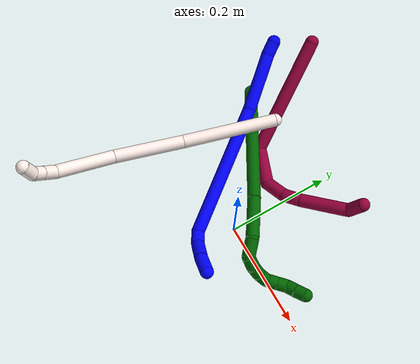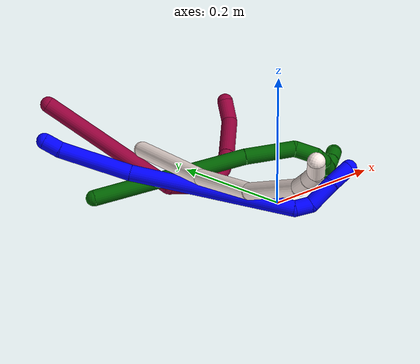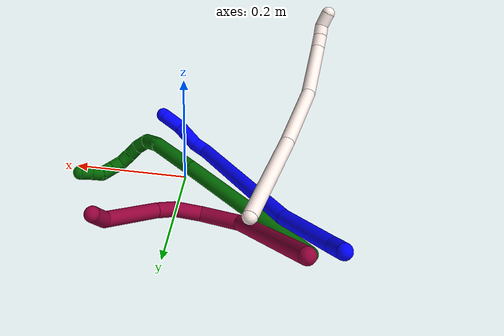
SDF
<sdf version="1.7">
 <world name="default">
  <model name="1">
   <static>0</static>
   <link name="1">
    <collision name="collision-cylinder-e_1_1_4">
     <pose>0.007458 -0.008598 0.007206 0.873246 0.586709 0.280083</pose>
     <geometry><cylinder><radius>0.0125</radius><length>0.026941</length></cylinder></geometry>
     <surface>
      <friction><ode><mu>1.16</mu><mu2>1.16</mu2><slip1>0</slip1><slip2>0</slip2></ode></friction>
      <contact><ode><kp>1e+06</kp><kd>1</kd><max_vel>0</max_vel><min_depth>0.001</min_depth></ode></contact>
     </surface>
    </collision>
    <visual name="visual-cylinder-e_1_1_4">
     <pose>0.007458 -0.008598 0.007206 0.873246 0.586709 0.280083</pose>
     <geometry><cylinder><radius>0.0125</radius><length>0.026941</length></cylinder></geometry>
     <material><ambient>0 0 1 1</ambient></material>
    </visual>
    <collision name="collision-cylinder-e_2_4_5">
     <pose>0.049618 -0.056091 0.034426 1.09556 0.670657 0.418956</pose>
     <geometry><cylinder><radius>0.0125</radius><length>0.111673</length></cylinder></geometry>
     <surface>
      <friction><ode><mu>1.16</mu><mu2>1.16</mu2><slip1>0</slip1><slip2>0</slip2></ode></friction>
      <contact><ode><kp>1e+06</kp><kd>1</kd><max_vel>0</max_vel><min_depth>0.001</min_depth></ode></contact>
     </surface>
    </collision>
    <visual name="visual-cylinder-e_2_4_5">
     <pose>0.049618 -0.056091 0.034426 1.09556 0.670657 0.418956</pose>
     <geometry><cylinder><radius>0.0125</radius><length>0.111673</length></cylinder></geometry>
     <material><ambient>0 0 1 1</ambient></material>
    </visual>
    <collision name="collision-cylinder-e_3_5_6">
     <pose>0.177061 -0.172958 0.092905 1.11252 0.817652 0.526243</pose>
     <geometry><cylinder><radius>0.0125</radius><length>0.254243</length></cylinder></geometry>
     <surface>
      <friction><ode><mu>1.16</mu><mu2>1.16</mu2><slip1>0</slip1><slip2>0</slip2></ode></friction>
      <contact><ode><kp>1e+06</kp><kd>1</kd><max_vel>0</max_vel><min_depth>0.001</min_depth></ode></contact>
     </surface>
    </collision>
    <visual name="visual-cylinder-e_3_5_6">
     <pose>0.177061 -0.172958 0.092905 1.11252 0.817652 0.526243</pose>
     <geometry><cylinder><radius>0.0125</radius><length>0.254243</length></cylinder></geometry>
     <material><ambient>0 0 1 1</ambient></material>
    </visual>
    <collision name="collision-cylinder-e_4_6_7">
     <pose>0.278828 -0.259857 0.128782 1.85277 0.770832 0.990141</pose>
     <geometry><cylinder><radius>0.0125</radius><length>0.025911</length></cylinder></geometry>
     <surface>
      <friction><ode><mu>1.16</mu><mu2>1.16</mu2><slip1>0</slip1><slip2>0</slip2></ode></friction>
      <contact><ode><kp>1e+06</kp><kd>1</kd><max_vel>0</max_vel><min_depth>0.001</min_depth></ode></contact>
     </surface>
    </collision>
    <visual name="visual-cylinder-e_4_6_7">
     <pose>0.278828 -0.259857 0.128782 1.85277 0.770832 0.990141</pose>
     <geometry><cylinder><radius>0.0125</radius><length>0.025911</length></cylinder></geometry>
     <material><ambient>0 0 1 1</ambient></material>
    </visual>
    <collision name="collision-cylinder-e_5_7_8">
     <pose>0.30311 -0.276628 0.112039 2.63558 0.755823 1.98707</pose>
     <geometry><cylinder><radius>0.0125</radius><length>0.044483</length></cylinder></geometry>
     <surface>
      <friction><ode><mu>1.16</mu><mu2>1.16</mu2><slip1>0</slip1><slip2>0</slip2></ode></friction>
      <contact><ode><kp>1e+06</kp><kd>1</kd><max_vel>0</max_vel><min_depth>0.001</min_depth></ode></contact>
     </surface>
    </collision>
    <visual name="visual-cylinder-e_5_7_8">
     <pose>0.30311 -0.276628 0.112039 2.63558 0.755823 1.98707</pose>
     <geometry><cylinder><radius>0.0125</radius><length>0.044483</length></cylinder></geometry>
     <material><ambient>0 0 1 1</ambient></material>
    </visual>
    <collision name="collision-cylinder-e_6_8_2">
     <pose>0.328912 -0.294083 0.086306 2.44876 0.611408 1.43687</pose>
     <geometry><cylinder><radius>0.0125</radius><length>0.036749</length></cylinder></geometry>
     <surface>
      <friction><ode><mu>1.16</mu><mu2>1.16</mu2><slip1>0</slip1><slip2>0</slip2></ode></friction>
      <contact><ode><kp>1e+06</kp><kd>1</kd><max_vel>0</max_vel><min_depth>0.001</min_depth></ode></contact>
     </surface>
    </collision>
    <visual name="visual-cylinder-e_6_8_2">
     <pose>0.328912 -0.294083 0.086306 2.44876 0.611408 1.43687</pose>
     <geometry><cylinder><radius>0.0125</radius><length>0.036749</length></cylinder></geometry>
     <material><ambient>0 0 1 1</ambient></material>
    </visual>
    <collision name="collision-sphere-2">
     <pose>0.339459 -0.303693 0.074729 0 -0 0</pose>
     <geometry><sphere><radius>0.0125</radius></sphere></geometry>
     <surface>
      <friction><ode><mu>1.16</mu><mu2>1.16</mu2><slip1>0</slip1><slip2>0</slip2></ode></friction>
      <contact><ode><kp>1e+06</kp><kd>1</kd><max_vel>0</max_vel><min_depth>0.001</min_depth></ode></contact>
     </surface>
    </collision>
    <visual name="visual-sphere-2">
     <pose>0.339459 -0.303693 0.074729 0 -0 0</pose>
     <geometry><sphere><radius>0.0125</radius></sphere></geometry>
     <material><ambient>0 0 1 1</ambient></material>
    </visual>
    <collision name="collision-sphere-4">
     <pose>0.014915 -0.017195 0.014411 0 -0 0</pose>
     <geometry><sphere><radius>0.0125</radius></sphere></geometry>
     <surface>
      <friction><ode><mu>1.16</mu><mu2>1.16</mu2><slip1>0</slip1><slip2>0</slip2></ode></friction>
      <contact><ode><kp>1e+06</kp><kd>1</kd><max_vel>0</max_vel><min_depth>0.001</min_depth></ode></contact>
     </surface>
    </collision>
    <visual name="visual-sphere-4">
     <pose>0.014915 -0.017195 0.014411 0 -0 0</pose>
     <geometry><sphere><radius>0.0125</radius></sphere></geometry>
     <material><ambient>0 0 1 1</ambient></material>
    </visual>
    <collision name="collision-sphere-1">
     <geometry><sphere><radius>0.0125</radius></sphere></geometry>
     <surface>
      <friction><ode><mu>1.16</mu><mu2>1.16</mu2><slip1>0</slip1><slip2>0</slip2></ode></friction>
      <contact><ode><kp>1e+06</kp><kd>1</kd><max_vel>0</max_vel><min_depth>0.001</min_depth></ode></contact>
     </surface>
    </collision>
    <visual name="visual-sphere-1">
     <geometry><sphere><radius>0.0125</radius></sphere></geometry>
     <material><ambient>0 0 1 1</ambient></material>
    </visual>
    <collision name="collision-sphere-8">
     <pose>0.318365 -0.284473 0.097882 0 -0 0</pose>
     <geometry><sphere><radius>0.0125</radius></sphere></geometry>
     <surface>
      <friction><ode><mu>1.16</mu><mu2>1.16</mu2><slip1>0</slip1><slip2>0</slip2></ode></friction>
      <contact><ode><kp>1e+06</kp><kd>1</kd><max_vel>0</max_vel><min_depth>0.001</min_depth></ode></contact>
     </surface>
    </collision>
    <visual name="visual-sphere-8">
     <pose>0.318365 -0.284473 0.097882 0 -0 0</pose>
     <geometry><sphere><radius>0.0125</radius></sphere></geometry>
     <material><ambient>0 0 1 1</ambient></material>
    </visual>
    <collision name="collision-sphere-5">
     <pose>0.08432 -0.094986 0.054441 0 -0 0</pose>
     <geometry><sphere><radius>0.0125</radius></sphere></geometry>
     <surface>
      <friction><ode><mu>1.16</mu><mu2>1.16</mu2><slip1>0</slip1><slip2>0</slip2></ode></friction>
      <contact><ode><kp>1e+06</kp><kd>1</kd><max_vel>0</max_vel><min_depth>0.001</min_depth></ode></contact>
     </surface>
    </collision>
    <visual name="visual-sphere-5">
     <pose>0.08432 -0.094986 0.054441 0 -0 0</pose>
     <geometry><sphere><radius>0.0125</radius></sphere></geometry>
     <material><ambient>0 0 1 1</ambient></material>
    </visual>
    <collision name="collision-sphere-6">
     <pose>0.269801 -0.25093 0.131368 0 -0 0</pose>
     <geometry><sphere><radius>0.0125</radius></sphere></geometry>
     <surface>
      <friction><ode><mu>1.16</mu><mu2>1.16</mu2><slip1>0</slip1><slip2>0</slip2></ode></friction>
      <contact><ode><kp>1e+06</kp><kd>1</kd><max_vel>0</max_vel><min_depth>0.001</min_depth></ode></contact>
     </surface>
    </collision>
    <visual name="visual-sphere-6">
     <pose>0.269801 -0.25093 0.131368 0 -0 0</pose>
     <geometry><sphere><radius>0.0125</radius></sphere></geometry>
     <material><ambient>0 0 1 1</ambient></material>
    </visual>
    <collision name="collision-sphere-7">
     <pose>0.287855 -0.268783 0.126196 0 -0 0</pose>
     <geometry><sphere><radius>0.0125</radius></sphere></geometry>
     <surface>
      <friction><ode><mu>1.16</mu><mu2>1.16</mu2><slip1>0</slip1><slip2>0</slip2></ode></friction>
      <contact><ode><kp>1e+06</kp><kd>1</kd><max_vel>0</max_vel><min_depth>0.001</min_depth></ode></contact>
     </surface>
    </collision>
    <visual name="visual-sphere-7">
     <pose>0.287855 -0.268783 0.126196 0 -0 0</pose>
     <geometry><sphere><radius>0.0125</radius></sphere></geometry>
     <material><ambient>0 0 1 1</ambient></material>
    </visual>
    <inertial>
     <pose>0.167107 -0.160629 0.078303 0 -0 0</pose>
     <mass>0.5</mass>
     <inertia>
      <ixx>0.001454</ixx>
      <ixy>0</ixy>
      <ixz>0</ixz>
      <iyy>0.00157</iyy>
      <iyz>0</iyz>
      <izz>-0.000148</izz>
     </inertia>
    </inertial>
   </link>
   <pose>-0.259623 0.239541 0.104206 2.59753 -0.484221 -1.31061</pose>
  </model>
  <model name="6">
   <static>0</static>
   <link name="6">
    <collision name="collision-cylinder-e_1_1_4">
     <pose>0.050542 -0.088238 -0.064214 2.19989 0.43372 0.816964</pose>
     <geometry><cylinder><radius>0.0125</radius><length>0.240532</length></cylinder></geometry>
     <surface>
      <friction><ode><mu>1.16</mu><mu2>1.16</mu2><slip1>0</slip1><slip2>0</slip2></ode></friction>
      <contact><ode><kp>1e+06</kp><kd>1</kd><max_vel>0</max_vel><min_depth>0.001</min_depth></ode></contact>
     </surface>
    </collision>
    <visual name="visual-cylinder-e_1_1_4">
     <pose>0.050542 -0.088238 -0.064214 2.19989 0.43372 0.816964</pose>
     <geometry><cylinder><radius>0.0125</radius><length>0.240532</length></cylinder></geometry>
     <material><ambient>0 0.392157 0.003922 1</ambient></material>
    </visual>
    <collision name="collision-cylinder-e_2_4_5">
     <pose>0.120514 -0.202394 -0.150429 2.27465 0.519236 1.04199</pose>
     <geometry><cylinder><radius>0.0125</radius><length>0.078314</length></cylinder></geometry>
     <surface>
      <friction><ode><mu>1.16</mu><mu2>1.16</mu2><slip1>0</slip1><slip2>0</slip2></ode></friction>
      <contact><ode><kp>1e+06</kp><kd>1</kd><max_vel>0</max_vel><min_depth>0.001</min_depth></ode></contact>
     </surface>
    </collision>
    <visual name="visual-cylinder-e_2_4_5">
     <pose>0.120514 -0.202394 -0.150429 2.27465 0.519236 1.04199</pose>
     <geometry><cylinder><radius>0.0125</radius><length>0.078314</length></cylinder></geometry>
     <material><ambient>0 0.392157 0.003922 1</ambient></material>
    </visual>
    <collision name="collision-cylinder-e_3_5_6">
     <pose>0.154075 -0.233776 -0.181383 2.59356 0.932229 2.12257</pose>
     <geometry><cylinder><radius>0.0125</radius><length>0.035197</length></cylinder></geometry>
     <surface>
      <friction><ode><mu>1.16</mu><mu2>1.16</mu2><slip1>0</slip1><slip2>0</slip2></ode></friction>
      <contact><ode><kp>1e+06</kp><kd>1</kd><max_vel>0</max_vel><min_depth>0.001</min_depth></ode></contact>
     </surface>
    </collision>
    <visual name="visual-cylinder-e_3_5_6">
     <pose>0.154075 -0.233776 -0.181383 2.59356 0.932229 2.12257</pose>
     <geometry><cylinder><radius>0.0125</radius><length>0.035197</length></cylinder></geometry>
     <material><ambient>0 0.392157 0.003922 1</ambient></material>
    </visual>
    <collision name="collision-cylinder-e_4_6_7">
     <pose>0.178951 -0.243098 -0.188049 1.03544 1.17551 0.725397</pose>
     <geometry><cylinder><radius>0.0125</radius><length>0.023286</length></cylinder></geometry>
     <surface>
      <friction><ode><mu>1.16</mu><mu2>1.16</mu2><slip1>0</slip1><slip2>0</slip2></ode></friction>
      <contact><ode><kp>1e+06</kp><kd>1</kd><max_vel>0</max_vel><min_depth>0.001</min_depth></ode></contact>
     </surface>
    </collision>
    <visual name="visual-cylinder-e_4_6_7">
     <pose>0.178951 -0.243098 -0.188049 1.03544 1.17551 0.725397</pose>
     <geometry><cylinder><radius>0.0125</radius><length>0.023286</length></cylinder></geometry>
     <material><ambient>0 0.392157 0.003922 1</ambient></material>
    </visual>
    <collision name="collision-cylinder-e_5_7_8">
     <pose>0.198924 -0.249252 -0.181324 0.477736 1.07444 0.288097</pose>
     <geometry><cylinder><radius>0.0125</radius><length>0.020988</length></cylinder></geometry>
     <surface>
      <friction><ode><mu>1.16</mu><mu2>1.16</mu2><slip1>0</slip1><slip2>0</slip2></ode></friction>
      <contact><ode><kp>1e+06</kp><kd>1</kd><max_vel>0</max_vel><min_depth>0.001</min_depth></ode></contact>
     </surface>
    </collision>
    <visual name="visual-cylinder-e_5_7_8">
     <pose>0.198924 -0.249252 -0.181324 0.477736 1.07444 0.288097</pose>
     <geometry><cylinder><radius>0.0125</radius><length>0.020988</length></cylinder></geometry>
     <material><ambient>0 0.392157 0.003922 1</ambient></material>
    </visual>
    <collision name="collision-cylinder-e_6_8_9">
     <pose>0.216396 -0.254975 -0.170886 0.518806 0.873211 0.246422</pose>
     <geometry><cylinder><radius>0.0125</radius><length>0.021513</length></cylinder></geometry>
     <surface>
      <friction><ode><mu>1.16</mu><mu2>1.16</mu2><slip1>0</slip1><slip2>0</slip2></ode></friction>
      <contact><ode><kp>1e+06</kp><kd>1</kd><max_vel>0</max_vel><min_depth>0.001</min_depth></ode></contact>
     </surface>
    </collision>
    <visual name="visual-cylinder-e_6_8_9">
     <pose>0.216396 -0.254975 -0.170886 0.518806 0.873211 0.246422</pose>
     <geometry><cylinder><radius>0.0125</radius><length>0.021513</length></cylinder></geometry>
     <material><ambient>0 0.392157 0.003922 1</ambient></material>
    </visual>
    <collision name="collision-cylinder-e_7_9_10">
     <pose>0.228002 -0.264537 -0.157649 0.703319 0.340657 0.126046</pose>
     <geometry><cylinder><radius>0.0125</radius><length>0.020132</length></cylinder></geometry>
     <surface>
      <friction><ode><mu>1.16</mu><mu2>1.16</mu2><slip1>0</slip1><slip2>0</slip2></ode></friction>
      <contact><ode><kp>1e+06</kp><kd>1</kd><max_vel>0</max_vel><min_depth>0.001</min_depth></ode></contact>
     </surface>
    </collision>
    <visual name="visual-cylinder-e_7_9_10">
     <pose>0.228002 -0.264537 -0.157649 0.703319 0.340657 0.126046</pose>
     <geometry><cylinder><radius>0.0125</radius><length>0.020132</length></cylinder></geometry>
     <material><ambient>0 0.392157 0.003922 1</ambient></material>
    </visual>
    <collision name="collision-cylinder-e_8_10_11">
     <pose>0.23465 -0.276796 -0.143214 0.704732 0.33448 0.123993</pose>
     <geometry><cylinder><radius>0.0125</radius><length>0.020011</length></cylinder></geometry>
     <surface>
      <friction><ode><mu>1.16</mu><mu2>1.16</mu2><slip1>0</slip1><slip2>0</slip2></ode></friction>
      <contact><ode><kp>1e+06</kp><kd>1</kd><max_vel>0</max_vel><min_depth>0.001</min_depth></ode></contact>
     </surface>
    </collision>
    <visual name="visual-cylinder-e_8_10_11">
     <pose>0.23465 -0.276796 -0.143214 0.704732 0.33448 0.123993</pose>
     <geometry><cylinder><radius>0.0125</radius><length>0.020011</length></cylinder></geometry>
     <material><ambient>0 0.392157 0.003922 1</ambient></material>
    </visual>
    <collision name="collision-cylinder-e_9_11_12">
     <pose>0.238639 -0.292414 -0.13292 1.25578 0.07043 0.051134</pose>
     <geometry><cylinder><radius>0.0125</radius><length>0.020022</length></cylinder></geometry>
     <surface>
      <friction><ode><mu>1.16</mu><mu2>1.16</mu2><slip1>0</slip1><slip2>0</slip2></ode></friction>
      <contact><ode><kp>1e+06</kp><kd>1</kd><max_vel>0</max_vel><min_depth>0.001</min_depth></ode></contact>
     </surface>
    </collision>
    <visual name="visual-cylinder-e_9_11_12">
     <pose>0.238639 -0.292414 -0.13292 1.25578 0.07043 0.051134</pose>
     <geometry><cylinder><radius>0.0125</radius><length>0.020022</length></cylinder></geometry>
     <material><ambient>0 0.392157 0.003922 1</ambient></material>
    </visual>
    <collision name="collision-cylinder-e_10_12_2">
     <pose>0.240144 -0.31121 -0.126235 1.20239 0.080112 0.054963</pose>
     <geometry><cylinder><radius>0.0125</radius><length>0.020004</length></cylinder></geometry>
     <surface>
      <friction><ode><mu>1.16</mu><mu2>1.16</mu2><slip1>0</slip1><slip2>0</slip2></ode></friction>
      <contact><ode><kp>1e+06</kp><kd>1</kd><max_vel>0</max_vel><min_depth>0.001</min_depth></ode></contact>
     </surface>
    </collision>
    <visual name="visual-cylinder-e_10_12_2">
     <pose>0.240144 -0.31121 -0.126235 1.20239 0.080112 0.054963</pose>
     <geometry><cylinder><radius>0.0125</radius><length>0.020004</length></cylinder></geometry>
     <material><ambient>0 0.392157 0.003922 1</ambient></material>
    </visual>
    <collision name="collision-sphere-2">
     <pose>0.240944 -0.320511 -0.122645 0 -0 0</pose>
     <geometry><sphere><radius>0.0125</radius></sphere></geometry>
     <surface>
      <friction><ode><mu>1.16</mu><mu2>1.16</mu2><slip1>0</slip1><slip2>0</slip2></ode></friction>
      <contact><ode><kp>1e+06</kp><kd>1</kd><max_vel>0</max_vel><min_depth>0.001</min_depth></ode></contact>
     </surface>
    </collision>
    <visual name="visual-sphere-2">
     <pose>0.240944 -0.320511 -0.122645 0 -0 0</pose>
     <geometry><sphere><radius>0.0125</radius></sphere></geometry>
     <material><ambient>0 0.392157 0.003922 1</ambient></material>
    </visual>
    <collision name="collision-sphere-12">
     <pose>0.239344 -0.301908 -0.129826 0 -0 0</pose>
     <geometry><sphere><radius>0.0125</radius></sphere></geometry>
     <surface>
      <friction><ode><mu>1.16</mu><mu2>1.16</mu2><slip1>0</slip1><slip2>0</slip2></ode></friction>
      <contact><ode><kp>1e+06</kp><kd>1</kd><max_vel>0</max_vel><min_depth>0.001</min_depth></ode></contact>
     </surface>
    </collision>
    <visual name="visual-sphere-12">
     <pose>0.239344 -0.301908 -0.129826 0 -0 0</pose>
     <geometry><sphere><radius>0.0125</radius></sphere></geometry>
     <material><ambient>0 0.392157 0.003922 1</ambient></material>
    </visual>
    <collision name="collision-sphere-11">
     <pose>0.237935 -0.282919 -0.136014 0 -0 0</pose>
     <geometry><sphere><radius>0.0125</radius></sphere></geometry>
     <surface>
      <friction><ode><mu>1.16</mu><mu2>1.16</mu2><slip1>0</slip1><slip2>0</slip2></ode></friction>
      <contact><ode><kp>1e+06</kp><kd>1</kd><max_vel>0</max_vel><min_depth>0.001</min_depth></ode></contact>
     </surface>
    </collision>
    <visual name="visual-sphere-11">
     <pose>0.237935 -0.282919 -0.136014 0 -0 0</pose>
     <geometry><sphere><radius>0.0125</radius></sphere></geometry>
     <material><ambient>0 0.392157 0.003922 1</ambient></material>
    </visual>
    <collision name="collision-sphere-10">
     <pose>0.231365 -0.270673 -0.150413 0 -0 0</pose>
     <geometry><sphere><radius>0.0125</radius></sphere></geometry>
     <surface>
      <friction><ode><mu>1.16</mu><mu2>1.16</mu2><slip1>0</slip1><slip2>0</slip2></ode></friction>
      <contact><ode><kp>1e+06</kp><kd>1</kd><max_vel>0</max_vel><min_depth>0.001</min_depth></ode></contact>
     </surface>
    </collision>
    <visual name="visual-sphere-10">
     <pose>0.231365 -0.270673 -0.150413 0 -0 0</pose>
     <geometry><sphere><radius>0.0125</radius></sphere></geometry>
     <material><ambient>0 0.392157 0.003922 1</ambient></material>
    </visual>
    <collision name="collision-sphere-9">
     <pose>0.224639 -0.258401 -0.164885 0 -0 0</pose>
     <geometry><sphere><radius>0.0125</radius></sphere></geometry>
     <surface>
      <friction><ode><mu>1.16</mu><mu2>1.16</mu2><slip1>0</slip1><slip2>0</slip2></ode></friction>
      <contact><ode><kp>1e+06</kp><kd>1</kd><max_vel>0</max_vel><min_depth>0.001</min_depth></ode></contact>
     </surface>
    </collision>
    <visual name="visual-sphere-9">
     <pose>0.224639 -0.258401 -0.164885 0 -0 0</pose>
     <geometry><sphere><radius>0.0125</radius></sphere></geometry>
     <material><ambient>0 0.392157 0.003922 1</ambient></material>
    </visual>
    <collision name="collision-sphere-4">
     <pose>0.101083 -0.176477 -0.128428 0 -0 0</pose>
     <geometry><sphere><radius>0.0125</radius></sphere></geometry>
     <surface>
      <friction><ode><mu>1.16</mu><mu2>1.16</mu2><slip1>0</slip1><slip2>0</slip2></ode></friction>
      <contact><ode><kp>1e+06</kp><kd>1</kd><max_vel>0</max_vel><min_depth>0.001</min_depth></ode></contact>
     </surface>
    </collision>
    <visual name="visual-sphere-4">
     <pose>0.101083 -0.176477 -0.128428 0 -0 0</pose>
     <geometry><sphere><radius>0.0125</radius></sphere></geometry>
     <material><ambient>0 0.392157 0.003922 1</ambient></material>
    </visual>
    <collision name="collision-sphere-1">
     <geometry><sphere><radius>0.0125</radius></sphere></geometry>
     <surface>
      <friction><ode><mu>1.16</mu><mu2>1.16</mu2><slip1>0</slip1><slip2>0</slip2></ode></friction>
      <contact><ode><kp>1e+06</kp><kd>1</kd><max_vel>0</max_vel><min_depth>0.001</min_depth></ode></contact>
     </surface>
    </collision>
    <visual name="visual-sphere-1">
     <geometry><sphere><radius>0.0125</radius></sphere></geometry>
     <material><ambient>0 0.392157 0.003922 1</ambient></material>
    </visual>
    <collision name="collision-sphere-8">
     <pose>0.208152 -0.251549 -0.176886 0 -0 0</pose>
     <geometry><sphere><radius>0.0125</radius></sphere></geometry>
     <surface>
      <friction><ode><mu>1.16</mu><mu2>1.16</mu2><slip1>0</slip1><slip2>0</slip2></ode></friction>
      <contact><ode><kp>1e+06</kp><kd>1</kd><max_vel>0</max_vel><min_depth>0.001</min_depth></ode></contact>
     </surface>
    </collision>
    <visual name="visual-sphere-8">
     <pose>0.208152 -0.251549 -0.176886 0 -0 0</pose>
     <geometry><sphere><radius>0.0125</radius></sphere></geometry>
     <material><ambient>0 0.392157 0.003922 1</ambient></material>
    </visual>
    <collision name="collision-sphere-5">
     <pose>0.139944 -0.228311 -0.17243 0 -0 0</pose>
     <geometry><sphere><radius>0.0125</radius></sphere></geometry>
     <surface>
      <friction><ode><mu>1.16</mu><mu2>1.16</mu2><slip1>0</slip1><slip2>0</slip2></ode></friction>
      <contact><ode><kp>1e+06</kp><kd>1</kd><max_vel>0</max_vel><min_depth>0.001</min_depth></ode></contact>
     </surface>
    </collision>
    <visual name="visual-sphere-5">
     <pose>0.139944 -0.228311 -0.17243 0 -0 0</pose>
     <geometry><sphere><radius>0.0125</radius></sphere></geometry>
     <material><ambient>0 0.392157 0.003922 1</ambient></material>
    </visual>
    <collision name="collision-sphere-6">
     <pose>0.168206 -0.239242 -0.190336 0 -0 0</pose>
     <geometry><sphere><radius>0.0125</radius></sphere></geometry>
     <surface>
      <friction><ode><mu>1.16</mu><mu2>1.16</mu2><slip1>0</slip1><slip2>0</slip2></ode></friction>
      <contact><ode><kp>1e+06</kp><kd>1</kd><max_vel>0</max_vel><min_depth>0.001</min_depth></ode></contact>
     </surface>
    </collision>
    <visual name="visual-sphere-6">
     <pose>0.168206 -0.239242 -0.190336 0 -0 0</pose>
     <geometry><sphere><radius>0.0125</radius></sphere></geometry>
     <material><ambient>0 0.392157 0.003922 1</ambient></material>
    </visual>
    <collision name="collision-sphere-7">
     <pose>0.189697 -0.246954 -0.185762 0 -0 0</pose>
     <geometry><sphere><radius>0.0125</radius></sphere></geometry>
     <surface>
      <friction><ode><mu>1.16</mu><mu2>1.16</mu2><slip1>0</slip1><slip2>0</slip2></ode></friction>
      <contact><ode><kp>1e+06</kp><kd>1</kd><max_vel>0</max_vel><min_depth>0.001</min_depth></ode></contact>
     </surface>
    </collision>
    <visual name="visual-sphere-7">
     <pose>0.189697 -0.246954 -0.185762 0 -0 0</pose>
     <geometry><sphere><radius>0.0125</radius></sphere></geometry>
     <material><ambient>0 0.392157 0.003922 1</ambient></material>
    </visual>
    <inertial>
     <pose>0.117766 -0.16925 -0.113395 0 -0 0</pose>
     <mass>0.5</mass>
     <inertia>
      <ixx>0.00158</ixx>
      <ixy>0</ixy>
      <ixz>0</ixz>
      <iyy>0.000616</iyy>
      <iyz>0</iyz>
      <izz>0.000362</izz>
     </inertia>
    </inertial>
   </link>
   <pose>-0.222571 0.171192 0.020719 -2.09617 0.943939 -0.434126</pose>
  </model>
  <model name="8">
   <static>0</static>
   <link name="8">
    <collision name="collision-cylinder-e_1_1_4">
     <pose>0.00075 -0.005497 -0.111624 3.09238 0.006715 0.271194</pose>
     <geometry><cylinder><radius>0.0125</radius><length>0.223524</length></cylinder></geometry>
     <surface>
      <friction><ode><mu>1.16</mu><mu2>1.16</mu2><slip1>0</slip1><slip2>0</slip2></ode></friction>
      <contact><ode><kp>1e+06</kp><kd>1</kd><max_vel>0</max_vel><min_depth>0.001</min_depth></ode></contact>
     </surface>
    </collision>
    <visual name="visual-cylinder-e_1_1_4">
     <pose>0.00075 -0.005497 -0.111624 3.09238 0.006715 0.271194</pose>
     <geometry><cylinder><radius>0.0125</radius><length>0.223524</length></cylinder></geometry>
     <material><ambient>0.584314 0 0.227451 1</ambient></material>
    </visual>
    <collision name="collision-cylinder-e_2_4_5">
     <pose>0.025972 -0.012201 -0.248691 3.0942 0.765395 3.02397</pose>
     <geometry><cylinder><radius>0.0125</radius><length>0.070643</length></cylinder></geometry>
     <surface>
      <friction><ode><mu>1.16</mu><mu2>1.16</mu2><slip1>0</slip1><slip2>0</slip2></ode></friction>
      <contact><ode><kp>1e+06</kp><kd>1</kd><max_vel>0</max_vel><min_depth>0.001</min_depth></ode></contact>
     </surface>
    </collision>
    <visual name="visual-cylinder-e_2_4_5">
     <pose>0.025972 -0.012201 -0.248691 3.0942 0.765395 3.02397</pose>
     <geometry><cylinder><radius>0.0125</radius><length>0.070643</length></cylinder></geometry>
     <material><ambient>0.584314 0 0.227451 1</ambient></material>
    </visual>
    <collision name="collision-cylinder-e_3_5_6">
     <pose>0.072611 -0.01445 -0.274753 2.1081 1.51615 2.06048</pose>
     <geometry><cylinder><radius>0.0125</radius><length>0.044401</length></cylinder></geometry>
     <surface>
      <friction><ode><mu>1.16</mu><mu2>1.16</mu2><slip1>0</slip1><slip2>0</slip2></ode></friction>
      <contact><ode><kp>1e+06</kp><kd>1</kd><max_vel>0</max_vel><min_depth>0.001</min_depth></ode></contact>
     </surface>
    </collision>
    <visual name="visual-cylinder-e_3_5_6">
     <pose>0.072611 -0.01445 -0.274753 2.1081 1.51615 2.06048</pose>
     <geometry><cylinder><radius>0.0125</radius><length>0.044401</length></cylinder></geometry>
     <material><ambient>0.584314 0 0.227451 1</ambient></material>
    </visual>
    <collision name="collision-cylinder-e_4_6_7">
     <pose>0.111481 -0.012726 -0.271303 -0.5968 1.28425 -0.452189</pose>
     <geometry><cylinder><radius>0.0125</radius><length>0.034824</length></cylinder></geometry>
     <surface>
      <friction><ode><mu>1.16</mu><mu2>1.16</mu2><slip1>0</slip1><slip2>0</slip2></ode></friction>
      <contact><ode><kp>1e+06</kp><kd>1</kd><max_vel>0</max_vel><min_depth>0.001</min_depth></ode></contact>
     </surface>
    </collision>
    <visual name="visual-cylinder-e_4_6_7">
     <pose>0.111481 -0.012726 -0.271303 -0.5968 1.28425 -0.452189</pose>
     <geometry><cylinder><radius>0.0125</radius><length>0.034824</length></cylinder></geometry>
     <material><ambient>0.584314 0 0.227451 1</ambient></material>
    </visual>
    <collision name="collision-cylinder-e_5_7_8">
     <pose>0.170392 0.000806 -0.253616 -0.669028 1.18063 -0.457603</pose>
     <geometry><cylinder><radius>0.0125</radius><length>0.091278</length></cylinder></geometry>
     <surface>
      <friction><ode><mu>1.16</mu><mu2>1.16</mu2><slip1>0</slip1><slip2>0</slip2></ode></friction>
      <contact><ode><kp>1e+06</kp><kd>1</kd><max_vel>0</max_vel><min_depth>0.001</min_depth></ode></contact>
     </surface>
    </collision>
    <visual name="visual-cylinder-e_5_7_8">
     <pose>0.170392 0.000806 -0.253616 -0.669028 1.18063 -0.457603</pose>
     <geometry><cylinder><radius>0.0125</radius><length>0.091278</length></cylinder></geometry>
     <material><ambient>0.584314 0 0.227451 1</ambient></material>
    </visual>
    <collision name="collision-cylinder-e_6_8_2">
     <pose>0.224284 0.00744 -0.227411 0.317148 0.722698 0.120732</pose>
     <geometry><cylinder><radius>0.0125</radius><length>0.03533</length></cylinder></geometry>
     <surface>
      <friction><ode><mu>1.16</mu><mu2>1.16</mu2><slip1>0</slip1><slip2>0</slip2></ode></friction>
      <contact><ode><kp>1e+06</kp><kd>1</kd><max_vel>0</max_vel><min_depth>0.001</min_depth></ode></contact>
     </surface>
    </collision>
    <visual name="visual-cylinder-e_6_8_2">
     <pose>0.224284 0.00744 -0.227411 0.317148 0.722698 0.120732</pose>
     <geometry><cylinder><radius>0.0125</radius><length>0.03533</length></cylinder></geometry>
     <material><ambient>0.584314 0 0.227451 1</ambient></material>
    </visual>
    <collision name="collision-sphere-2">
     <pose>0.235968 0.003309 -0.214823 0 -0 0</pose>
     <geometry><sphere><radius>0.0125</radius></sphere></geometry>
     <surface>
      <friction><ode><mu>1.16</mu><mu2>1.16</mu2><slip1>0</slip1><slip2>0</slip2></ode></friction>
      <contact><ode><kp>1e+06</kp><kd>1</kd><max_vel>0</max_vel><min_depth>0.001</min_depth></ode></contact>
     </surface>
    </collision>
    <visual name="visual-sphere-2">
     <pose>0.235968 0.003309 -0.214823 0 -0 0</pose>
     <geometry><sphere><radius>0.0125</radius></sphere></geometry>
     <material><ambient>0.584314 0 0.227451 1</ambient></material>
    </visual>
    <collision name="collision-sphere-4">
     <pose>0.001501 -0.010995 -0.223249 0 -0 0</pose>
     <geometry><sphere><radius>0.0125</radius></sphere></geometry>
     <surface>
      <friction><ode><mu>1.16</mu><mu2>1.16</mu2><slip1>0</slip1><slip2>0</slip2></ode></friction>
      <contact><ode><kp>1e+06</kp><kd>1</kd><max_vel>0</max_vel><min_depth>0.001</min_depth></ode></contact>
     </surface>
    </collision>
    <visual name="visual-sphere-4">
     <pose>0.001501 -0.010995 -0.223249 0 -0 0</pose>
     <geometry><sphere><radius>0.0125</radius></sphere></geometry>
     <material><ambient>0.584314 0 0.227451 1</ambient></material>
    </visual>
    <collision name="collision-sphere-1">
     <geometry><sphere><radius>0.0125</radius></sphere></geometry>
     <surface>
      <friction><ode><mu>1.16</mu><mu2>1.16</mu2><slip1>0</slip1><slip2>0</slip2></ode></friction>
      <contact><ode><kp>1e+06</kp><kd>1</kd><max_vel>0</max_vel><min_depth>0.001</min_depth></ode></contact>
     </surface>
    </collision>
    <visual name="visual-sphere-1">
     <geometry><sphere><radius>0.0125</radius></sphere></geometry>
     <material><ambient>0.584314 0 0.227451 1</ambient></material>
    </visual>
    <collision name="collision-sphere-8">
     <pose>0.212601 0.011572 -0.24 0 -0 0</pose>
     <geometry><sphere><radius>0.0125</radius></sphere></geometry>
     <surface>
      <friction><ode><mu>1.16</mu><mu2>1.16</mu2><slip1>0</slip1><slip2>0</slip2></ode></friction>
      <contact><ode><kp>1e+06</kp><kd>1</kd><max_vel>0</max_vel><min_depth>0.001</min_depth></ode></contact>
     </surface>
    </collision>
    <visual name="visual-sphere-8">
     <pose>0.212601 0.011572 -0.24 0 -0 0</pose>
     <geometry><sphere><radius>0.0125</radius></sphere></geometry>
     <material><ambient>0.584314 0 0.227451 1</ambient></material>
    </visual>
    <collision name="collision-sphere-5">
     <pose>0.050444 -0.013408 -0.274133 0 -0 0</pose>
     <geometry><sphere><radius>0.0125</radius></sphere></geometry>
     <surface>
      <friction><ode><mu>1.16</mu><mu2>1.16</mu2><slip1>0</slip1><slip2>0</slip2></ode></friction>
      <contact><ode><kp>1e+06</kp><kd>1</kd><max_vel>0</max_vel><min_depth>0.001</min_depth></ode></contact>
     </surface>
    </collision>
    <visual name="visual-sphere-5">
     <pose>0.050444 -0.013408 -0.274133 0 -0 0</pose>
     <geometry><sphere><radius>0.0125</radius></sphere></geometry>
     <material><ambient>0.584314 0 0.227451 1</ambient></material>
    </visual>
    <collision name="collision-sphere-6">
     <pose>0.094779 -0.015492 -0.275374 0 -0 0</pose>
     <geometry><sphere><radius>0.0125</radius></sphere></geometry>
     <surface>
      <friction><ode><mu>1.16</mu><mu2>1.16</mu2><slip1>0</slip1><slip2>0</slip2></ode></friction>
      <contact><ode><kp>1e+06</kp><kd>1</kd><max_vel>0</max_vel><min_depth>0.001</min_depth></ode></contact>
     </surface>
    </collision>
    <visual name="visual-sphere-6">
     <pose>0.094779 -0.015492 -0.275374 0 -0 0</pose>
     <geometry><sphere><radius>0.0125</radius></sphere></geometry>
     <material><ambient>0.584314 0 0.227451 1</ambient></material>
    </visual>
    <collision name="collision-sphere-7">
     <pose>0.128183 -0.00996 -0.267233 0 -0 0</pose>
     <geometry><sphere><radius>0.0125</radius></sphere></geometry>
     <surface>
      <friction><ode><mu>1.16</mu><mu2>1.16</mu2><slip1>0</slip1><slip2>0</slip2></ode></friction>
      <contact><ode><kp>1e+06</kp><kd>1</kd><max_vel>0</max_vel><min_depth>0.001</min_depth></ode></contact>
     </surface>
    </collision>
    <visual name="visual-sphere-7">
     <pose>0.128183 -0.00996 -0.267233 0 -0 0</pose>
     <geometry><sphere><radius>0.0125</radius></sphere></geometry>
     <material><ambient>0.584314 0 0.227451 1</ambient></material>
    </visual>
    <inertial>
     <pose>0.065171 -0.005678 -0.1907 0 -0 0</pose>
     <mass>0.5</mass>
     <inertia>
      <ixx>0.001171</ixx>
      <ixy>0</ixy>
      <ixz>0</ixz>
      <iyy>-0.000545</iyy>
      <iyz>0</iyz>
      <izz>-9.2e-05</izz>
     </inertia>
    </inertial>
   </link>
   <pose>-0.208893 0.288502 0.138397 -0.944607 -0.315637 0.328312</pose>
  </model>
  <model name="11">
   <static>0</static>
   <link name="11">
    <collision name="collision-cylinder-e_1_1_4">
     <pose>0.00682 -0.022021 0.087475 0.246617 0.075464 0.009357</pose>
     <geometry><cylinder><radius>0.0125</radius><length>0.180923</length></cylinder></geometry>
     <surface>
      <friction><ode><mu>1.16</mu><mu2>1.16</mu2><slip1>0</slip1><slip2>0</slip2></ode></friction>
      <contact><ode><kp>1e+06</kp><kd>1</kd><max_vel>0</max_vel><min_depth>0.001</min_depth></ode></contact>
     </surface>
    </collision>
    <visual name="visual-cylinder-e_1_1_4">
     <pose>0.00682 -0.022021 0.087475 0.246617 0.075464 0.009357</pose>
     <geometry><cylinder><radius>0.0125</radius><length>0.180923</length></cylinder></geometry>
     <material><ambient>1 0.933333 0.909804 1</ambient></material>
    </visual>
    <collision name="collision-cylinder-e_2_4_5">
     <pose>0.013838 -0.063338 0.238422 0.295127 0.002981 0.000443</pose>
     <geometry><cylinder><radius>0.0125</radius><length>0.132682</length></cylinder></geometry>
     <surface>
      <friction><ode><mu>1.16</mu><mu2>1.16</mu2><slip1>0</slip1><slip2>0</slip2></ode></friction>
      <contact><ode><kp>1e+06</kp><kd>1</kd><max_vel>0</max_vel><min_depth>0.001</min_depth></ode></contact>
     </surface>
    </collision>
    <visual name="visual-cylinder-e_2_4_5">
     <pose>0.013838 -0.063338 0.238422 0.295127 0.002981 0.000443</pose>
     <geometry><cylinder><radius>0.0125</radius><length>0.132682</length></cylinder></geometry>
     <material><ambient>1 0.933333 0.909804 1</ambient></material>
    </visual>
    <collision name="collision-cylinder-e_3_5_6">
     <pose>0.002367 -0.101254 0.353963 0.343445 -0.207957 -0.036193</pose>
     <geometry><cylinder><radius>0.0125</radius><length>0.113031</length></cylinder></geometry>
     <surface>
      <friction><ode><mu>1.16</mu><mu2>1.16</mu2><slip1>0</slip1><slip2>0</slip2></ode></friction>
      <contact><ode><kp>1e+06</kp><kd>1</kd><max_vel>0</max_vel><min_depth>0.001</min_depth></ode></contact>
     </surface>
    </collision>
    <visual name="visual-cylinder-e_3_5_6">
     <pose>0.002367 -0.101254 0.353963 0.343445 -0.207957 -0.036193</pose>
     <geometry><cylinder><radius>0.0125</radius><length>0.113031</length></cylinder></geometry>
     <material><ambient>1 0.933333 0.909804 1</ambient></material>
    </visual>
    <collision name="collision-cylinder-e_4_6_7">
     <pose>-0.014714 -0.126893 0.415857 0.620263 -0.421479 -0.136894</pose>
     <geometry><cylinder><radius>0.0125</radius><length>0.026465</length></cylinder></geometry>
     <surface>
      <friction><ode><mu>1.16</mu><mu2>1.16</mu2><slip1>0</slip1><slip2>0</slip2></ode></friction>
      <contact><ode><kp>1e+06</kp><kd>1</kd><max_vel>0</max_vel><min_depth>0.001</min_depth></ode></contact>
     </surface>
    </collision>
    <visual name="visual-cylinder-e_4_6_7">
     <pose>-0.014714 -0.126893 0.415857 0.620263 -0.421479 -0.136894</pose>
     <geometry><cylinder><radius>0.0125</radius><length>0.026465</length></cylinder></geometry>
     <material><ambient>1 0.933333 0.909804 1</ambient></material>
    </visual>
    <collision name="collision-cylinder-e_5_7_8">
     <pose>-0.024861 -0.139377 0.432843 0.651955 -0.483806 -0.166426</pose>
     <geometry><cylinder><radius>0.0125</radius><length>0.020352</length></cylinder></geometry>
     <surface>
      <friction><ode><mu>1.16</mu><mu2>1.16</mu2><slip1>0</slip1><slip2>0</slip2></ode></friction>
      <contact><ode><kp>1e+06</kp><kd>1</kd><max_vel>0</max_vel><min_depth>0.001</min_depth></ode></contact>
     </surface>
    </collision>
    <visual name="visual-cylinder-e_5_7_8">
     <pose>-0.024861 -0.139377 0.432843 0.651955 -0.483806 -0.166426</pose>
     <geometry><cylinder><radius>0.0125</radius><length>0.020352</length></cylinder></geometry>
     <material><ambient>1 0.933333 0.909804 1</ambient></material>
    </visual>
    <collision name="collision-cylinder-e_6_8_2">
     <pose>-0.034407 -0.156473 0.444219 1.22304 -0.371007 -0.261666</pose>
     <geometry><cylinder><radius>0.0125</radius><length>0.026547</length></cylinder></geometry>
     <surface>
      <friction><ode><mu>1.16</mu><mu2>1.16</mu2><slip1>0</slip1><slip2>0</slip2></ode></friction>
      <contact><ode><kp>1e+06</kp><kd>1</kd><max_vel>0</max_vel><min_depth>0.001</min_depth></ode></contact>
     </surface>
    </collision>
    <visual name="visual-cylinder-e_6_8_2">
     <pose>-0.034407 -0.156473 0.444219 1.22304 -0.371007 -0.261666</pose>
     <geometry><cylinder><radius>0.0125</radius><length>0.026547</length></cylinder></geometry>
     <material><ambient>1 0.933333 0.909804 1</ambient></material>
    </visual>
    <collision name="collision-sphere-2">
     <pose>-0.039219 -0.168103 0.448435 0 -0 0</pose>
     <geometry><sphere><radius>0.0125</radius></sphere></geometry>
     <surface>
      <friction><ode><mu>1.16</mu><mu2>1.16</mu2><slip1>0</slip1><slip2>0</slip2></ode></friction>
      <contact><ode><kp>1e+06</kp><kd>1</kd><max_vel>0</max_vel><min_depth>0.001</min_depth></ode></contact>
     </surface>
    </collision>
    <visual name="visual-sphere-2">
     <pose>-0.039219 -0.168103 0.448435 0 -0 0</pose>
     <geometry><sphere><radius>0.0125</radius></sphere></geometry>
     <material><ambient>1 0.933333 0.909804 1</ambient></material>
    </visual>
    <collision name="collision-sphere-4">
     <pose>0.01364 -0.044042 0.17495 0 -0 0</pose>
     <geometry><sphere><radius>0.0125</radius></sphere></geometry>
     <surface>
      <friction><ode><mu>1.16</mu><mu2>1.16</mu2><slip1>0</slip1><slip2>0</slip2></ode></friction>
      <contact><ode><kp>1e+06</kp><kd>1</kd><max_vel>0</max_vel><min_depth>0.001</min_depth></ode></contact>
     </surface>
    </collision>
    <visual name="visual-sphere-4">
     <pose>0.01364 -0.044042 0.17495 0 -0 0</pose>
     <geometry><sphere><radius>0.0125</radius></sphere></geometry>
     <material><ambient>1 0.933333 0.909804 1</ambient></material>
    </visual>
    <collision name="collision-sphere-1">
     <geometry><sphere><radius>0.0125</radius></sphere></geometry>
     <surface>
      <friction><ode><mu>1.16</mu><mu2>1.16</mu2><slip1>0</slip1><slip2>0</slip2></ode></friction>
      <contact><ode><kp>1e+06</kp><kd>1</kd><max_vel>0</max_vel><min_depth>0.001</min_depth></ode></contact>
     </surface>
    </collision>
    <visual name="visual-sphere-1">
     <geometry><sphere><radius>0.0125</radius></sphere></geometry>
     <material><ambient>1 0.933333 0.909804 1</ambient></material>
    </visual>
    <collision name="collision-sphere-8">
     <pose>-0.029595 -0.144843 0.440003 0 -0 0</pose>
     <geometry><sphere><radius>0.0125</radius></sphere></geometry>
     <surface>
      <friction><ode><mu>1.16</mu><mu2>1.16</mu2><slip1>0</slip1><slip2>0</slip2></ode></friction>
      <contact><ode><kp>1e+06</kp><kd>1</kd><max_vel>0</max_vel><min_depth>0.001</min_depth></ode></contact>
     </surface>
    </collision>
    <visual name="visual-sphere-8">
     <pose>-0.029595 -0.144843 0.440003 0 -0 0</pose>
     <geometry><sphere><radius>0.0125</radius></sphere></geometry>
     <material><ambient>1 0.933333 0.909804 1</ambient></material>
    </visual>
    <collision name="collision-sphere-5">
     <pose>0.014036 -0.082634 0.301895 0 -0 0</pose>
     <geometry><sphere><radius>0.0125</radius></sphere></geometry>
     <surface>
      <friction><ode><mu>1.16</mu><mu2>1.16</mu2><slip1>0</slip1><slip2>0</slip2></ode></friction>
      <contact><ode><kp>1e+06</kp><kd>1</kd><max_vel>0</max_vel><min_depth>0.001</min_depth></ode></contact>
     </surface>
    </collision>
    <visual name="visual-sphere-5">
     <pose>0.014036 -0.082634 0.301895 0 -0 0</pose>
     <geometry><sphere><radius>0.0125</radius></sphere></geometry>
     <material><ambient>1 0.933333 0.909804 1</ambient></material>
    </visual>
    <collision name="collision-sphere-6">
     <pose>-0.009301 -0.119875 0.406032 0 -0 0</pose>
     <geometry><sphere><radius>0.0125</radius></sphere></geometry>
     <surface>
      <friction><ode><mu>1.16</mu><mu2>1.16</mu2><slip1>0</slip1><slip2>0</slip2></ode></friction>
      <contact><ode><kp>1e+06</kp><kd>1</kd><max_vel>0</max_vel><min_depth>0.001</min_depth></ode></contact>
     </surface>
    </collision>
    <visual name="visual-sphere-6">
     <pose>-0.009301 -0.119875 0.406032 0 -0 0</pose>
     <geometry><sphere><radius>0.0125</radius></sphere></geometry>
     <material><ambient>1 0.933333 0.909804 1</ambient></material>
    </visual>
    <collision name="collision-sphere-7">
     <pose>-0.020128 -0.133912 0.425682 0 -0 0</pose>
     <geometry><sphere><radius>0.0125</radius></sphere></geometry>
     <surface>
      <friction><ode><mu>1.16</mu><mu2>1.16</mu2><slip1>0</slip1><slip2>0</slip2></ode></friction>
      <contact><ode><kp>1e+06</kp><kd>1</kd><max_vel>0</max_vel><min_depth>0.001</min_depth></ode></contact>
     </surface>
    </collision>
    <visual name="visual-sphere-7">
     <pose>-0.020128 -0.133912 0.425682 0 -0 0</pose>
     <geometry><sphere><radius>0.0125</radius></sphere></geometry>
     <material><ambient>1 0.933333 0.909804 1</ambient></material>
    </visual>
    <inertial>
     <pose>0.003058 -0.068363 0.238154 0 -0 0</pose>
     <mass>0.5</mass>
     <inertia>
      <ixx>0.000823</ixx>
      <ixy>0</ixy>
      <ixz>0</ixz>
      <iyy>0.000785</iyy>
      <iyz>0</iyz>
      <izz>0.000251</izz>
     </inertia>
    </inertial>
   </link>
   <pose>-0.128659 0.164237 0.076689 -1.63478 0.773515 3.07645</pose>
  </model>
 </world>
</sdf>
